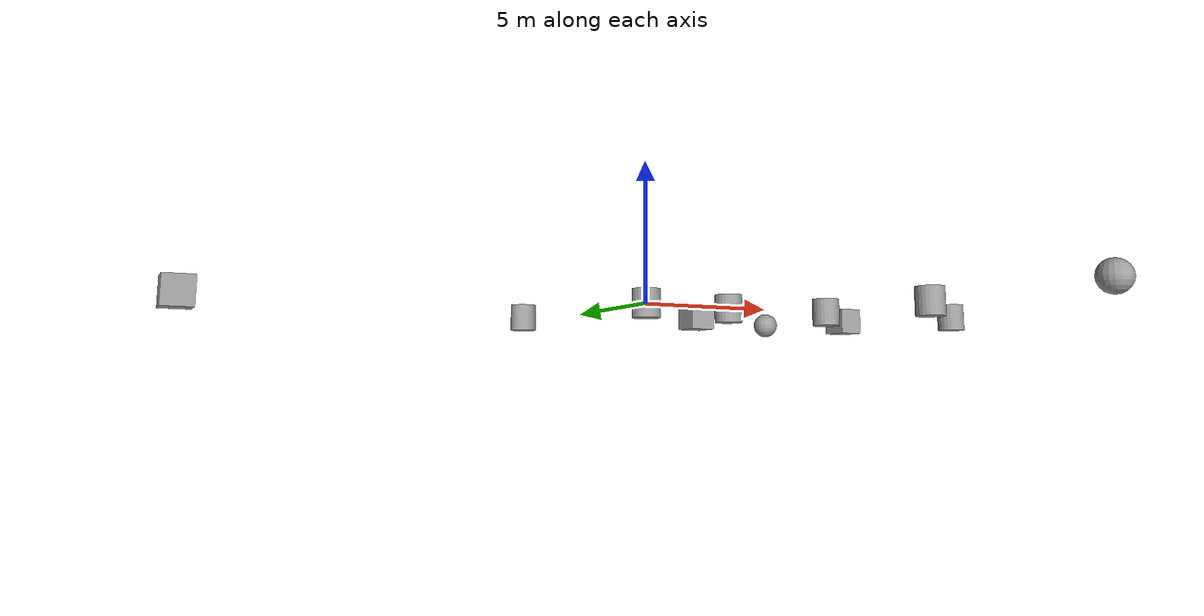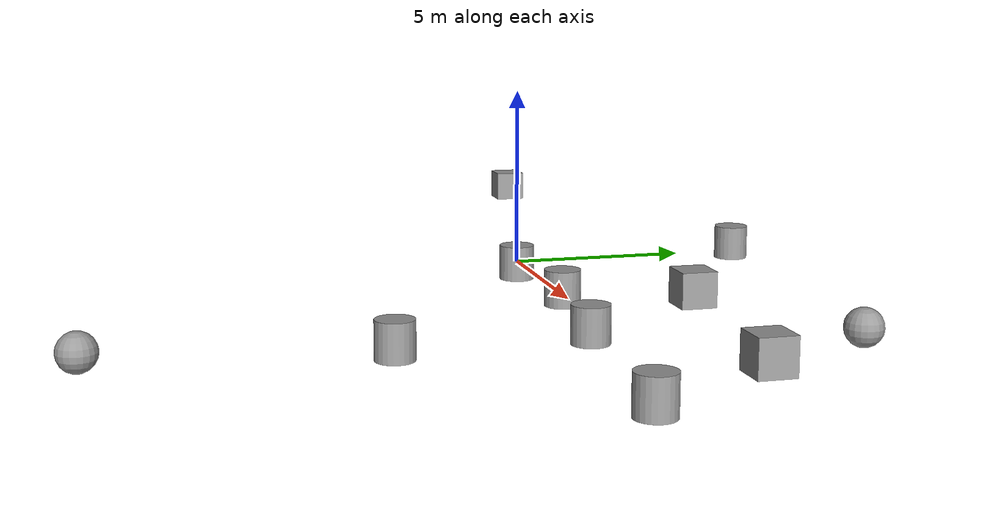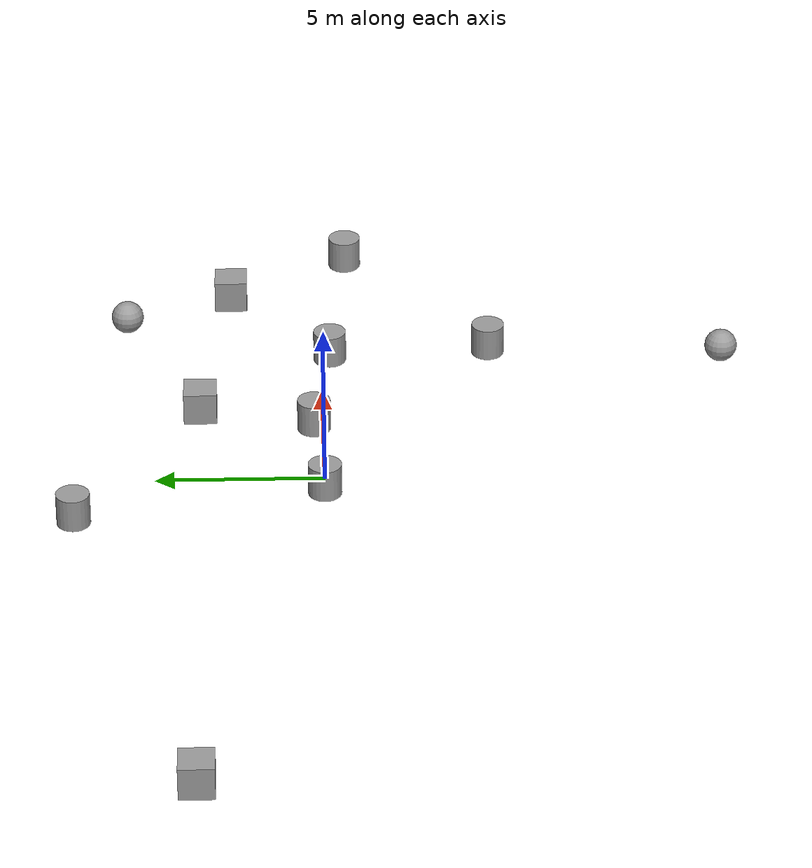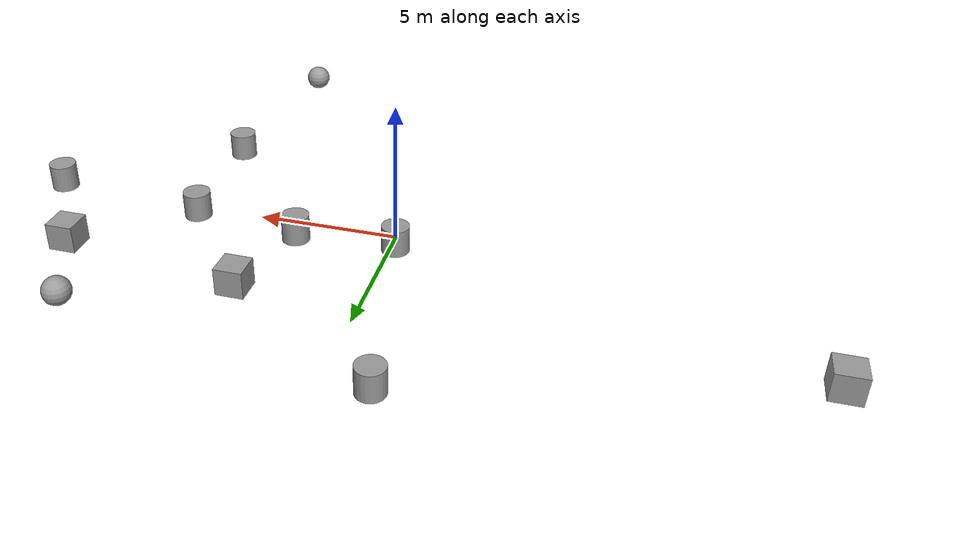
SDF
<?xml version='1.0'?>
<sdf version='1.7'>
  <model name='5550room2'>
    <link name='link'>
      <inertial>
        <mass>1</mass>
        <inertia>
          <ixx>0.145833</ixx>
          <ixy>0</ixy>
          <ixz>0</ixz>
          <iyy>0.145833</iyy>
          <iyz>0</iyz>
          <izz>0.125</izz>
        </inertia>
        <pose>0 0 0 0 -0 0</pose>
      </inertial>
      <self_collide>0</self_collide>
      <enable_wind>0</enable_wind>
      <kinematic>0</kinematic>
      <pose>0 0 0 0 -0 0</pose>
      <visual name='visual'>
        <geometry>
          <cylinder>
            <radius>0.5</radius>
            <length>1</length>
          </cylinder>
        </geometry>
        <material>
          <script>
            <name>Gazebo/Grey</name>
            <uri>file://media/materials/scripts/gazebo.material</uri>
          </script>
          <shader type='pixel'/>
        </material>
        <pose>0 0 0 0 -0 0</pose>
        <transparency>0</transparency>
        <cast_shadows>1</cast_shadows>
      </visual>
      <collision name='collision'>
        <laser_retro>0</laser_retro>
        <max_contacts>10</max_contacts>
        <pose>0 0 0 0 -0 0</pose>
        <geometry>
          <cylinder>
            <radius>0.5</radius>
            <length>1</length>
          </cylinder>
        </geometry>
        <surface>
          <friction>
            <ode>
              <mu>1</mu>
              <mu2>1</mu2>
              <fdir1>0 0 0</fdir1>
              <slip1>0</slip1>
              <slip2>0</slip2>
            </ode>
            <torsional>
              <coefficient>1</coefficient>
              <patch_radius>0</patch_radius>
              <surface_radius>0</surface_radius>
              <use_patch_radius>1</use_patch_radius>
              <ode>
                <slip>0</slip>
              </ode>
            </torsional>
          </friction>
          <bounce>
            <restitution_coefficient>0</restitution_coefficient>
            <threshold>1e+06</threshold>
          </bounce>
          <contact>
            <collide_without_contact>0</collide_without_contact>
            <collide_without_contact_bitmask>1</collide_without_contact_bitmask>
            <collide_bitmask>1</collide_bitmask>
            <ode>
              <soft_cfm>0</soft_cfm>
              <soft_erp>0.2</soft_erp>
              <kp>1e+13</kp>
              <kd>1</kd>
              <max_vel>0.01</max_vel>
              <min_depth>0</min_depth>
            </ode>
            <bullet>
              <split_impulse>1</split_impulse>
              <split_impulse_penetration_threshold>-0.01</split_impulse_penetration_threshold>
              <soft_cfm>0</soft_cfm>
              <soft_erp>0.2</soft_erp>
              <kp>1e+13</kp>
              <kd>1</kd>
            </bullet>
          </contact>
        </surface>
      </collision>
    </link>
    <link name='link_0'>
      <inertial>
        <mass>1</mass>
        <inertia>
          <ixx>0.145833</ixx>
          <ixy>0</ixy>
          <ixz>0</ixz>
          <iyy>0.145833</iyy>
          <iyz>0</iyz>
          <izz>0.125</izz>
        </inertia>
      </inertial>
      <pose>7.9857 -5.19386 -0 0 -0 0</pose>
      <visual name='visual'>
        <pose>0 0 0 0 -0 0</pose>
        <geometry>
          <cylinder>
            <radius>0.5</radius>
            <length>1</length>
          </cylinder>
        </geometry>
        <material>
          <lighting>1</lighting>
          <script>
            <uri>file://media/materials/scripts/gazebo.material</uri>
            <name>Gazebo/Grey</name>
          </script>
          <shader type='pixel'/>
        </material>
        <transparency>0</transparency>
        <cast_shadows>1</cast_shadows>
      </visual>
      <collision name='collision'>
        <laser_retro>0</laser_retro>
        <max_contacts>10</max_contacts>
        <pose>0 0 0 0 -0 0</pose>
        <geometry>
          <cylinder>
            <radius>0.5</radius>
            <length>1</length>
          </cylinder>
        </geometry>
        <surface>
          <friction>
            <ode>
              <mu>1</mu>
              <mu2>1</mu2>
              <fdir1>0 0 0</fdir1>
              <slip1>0</slip1>
              <slip2>0</slip2>
            </ode>
            <torsional>
              <coefficient>1</coefficient>
              <patch_radius>0</patch_radius>
              <surface_radius>0</surface_radius>
              <use_patch_radius>1</use_patch_radius>
              <ode>
                <slip>0</slip>
              </ode>
            </torsional>
          </friction>
          <bounce>
            <restitution_coefficient>0</restitution_coefficient>
            <threshold>1e+06</threshold>
          </bounce>
          <contact>
            <collide_without_contact>0</collide_without_contact>
            <collide_without_contact_bitmask>1</collide_without_contact_bitmask>
            <collide_bitmask>1</collide_bitmask>
            <ode>
              <soft_cfm>0</soft_cfm>
              <soft_erp>0.2</soft_erp>
              <kp>1e+13</kp>
              <kd>1</kd>
              <max_vel>0.01</max_vel>
              <min_depth>0</min_depth>
            </ode>
            <bullet>
              <split_impulse>1</split_impulse>
              <split_impulse_penetration_threshold>-0.01</split_impulse_penetration_threshold>
              <soft_cfm>0</soft_cfm>
              <soft_erp>0.2</soft_erp>
              <kp>1e+13</kp>
              <kd>1</kd>
            </bullet>
          </contact>
        </surface>
      </collision>
    </link>
    <link name='link_1'>
      <inertial>
        <mass>1</mass>
        <inertia>
          <ixx>0.1</ixx>
          <ixy>0</ixy>
          <ixz>0</ixz>
          <iyy>0.1</iyy>
          <iyz>0</iyz>
          <izz>0.1</izz>
        </inertia>
      </inertial>
      <pose>7.32017 -12.4174 -0 0 -0 0</pose>
      <visual name='visual'>
        <pose>0 0 0 0 -0 0</pose>
        <geometry>
          <sphere>
            <radius>0.5</radius>
          </sphere>
        </geometry>
        <material>
          <lighting>1</lighting>
          <script>
            <uri>file://media/materials/scripts/gazebo.material</uri>
            <name>Gazebo/Grey</name>
          </script>
          <shader type='pixel'/>
        </material>
        <transparency>0</transparency>
        <cast_shadows>1</cast_shadows>
      </visual>
      <collision name='collision'>
        <laser_retro>0</laser_retro>
        <max_contacts>10</max_contacts>
        <pose>0 0 0 0 -0 0</pose>
        <geometry>
          <sphere>
            <radius>0.5</radius>
          </sphere>
        </geometry>
        <surface>
          <friction>
            <ode>
              <mu>1</mu>
              <mu2>1</mu2>
              <fdir1>0 0 0</fdir1>
              <slip1>0</slip1>
              <slip2>0</slip2>
            </ode>
            <torsional>
              <coefficient>1</coefficient>
              <patch_radius>0</patch_radius>
              <surface_radius>0</surface_radius>
              <use_patch_radius>1</use_patch_radius>
              <ode>
                <slip>0</slip>
              </ode>
            </torsional>
          </friction>
          <bounce>
            <restitution_coefficient>0</restitution_coefficient>
            <threshold>1e+06</threshold>
          </bounce>
          <contact>
            <collide_without_contact>0</collide_without_contact>
            <collide_without_contact_bitmask>1</collide_without_contact_bitmask>
            <collide_bitmask>1</collide_bitmask>
            <ode>
              <soft_cfm>0</soft_cfm>
              <soft_erp>0.2</soft_erp>
              <kp>1e+13</kp>
              <kd>1</kd>
              <max_vel>0.01</max_vel>
              <min_depth>0</min_depth>
            </ode>
            <bullet>
              <split_impulse>1</split_impulse>
              <split_impulse_penetration_threshold>-0.01</split_impulse_penetration_threshold>
              <soft_cfm>0</soft_cfm>
              <soft_erp>0.2</soft_erp>
              <kp>1e+13</kp>
              <kd>1</kd>
            </bullet>
          </contact>
        </surface>
      </collision>
    </link>
    <link name='link_10'>
      <inertial>
        <mass>1</mass>
        <inertia>
          <ixx>0.145833</ixx>
          <ixy>0</ixy>
          <ixz>0</ixz>
          <iyy>0.145833</iyy>
          <iyz>0</iyz>
          <izz>0.125</izz>
        </inertia>
      </inertial>
      <pose>3.61931 0.2784 -0 0 -0 0</pose>
      <visual name='visual'>
        <pose>0 0 0 0 -0 0</pose>
        <geometry>
          <cylinder>
            <radius>0.5</radius>
            <length>1</length>
          </cylinder>
        </geometry>
        <material>
          <lighting>1</lighting>
          <script>
            <uri>file://media/materials/scripts/gazebo.material</uri>
            <name>Gazebo/Grey</name>
          </script>
          <shader type='pixel'/>
        </material>
        <transparency>0</transparency>
        <cast_shadows>1</cast_shadows>
      </visual>
      <collision name='collision'>
        <laser_retro>0</laser_retro>
        <max_contacts>10</max_contacts>
        <pose>0 0 0 0 -0 0</pose>
        <geometry>
          <cylinder>
            <radius>0.5</radius>
            <length>1</length>
          </cylinder>
        </geometry>
        <surface>
          <friction>
            <ode>
              <mu>1</mu>
              <mu2>1</mu2>
              <fdir1>0 0 0</fdir1>
              <slip1>0</slip1>
              <slip2>0</slip2>
            </ode>
            <torsional>
              <coefficient>1</coefficient>
              <patch_radius>0</patch_radius>
              <surface_radius>0</surface_radius>
              <use_patch_radius>1</use_patch_radius>
              <ode>
                <slip>0</slip>
              </ode>
            </torsional>
          </friction>
          <bounce>
            <restitution_coefficient>0</restitution_coefficient>
            <threshold>1e+06</threshold>
          </bounce>
          <contact>
            <collide_without_contact>0</collide_without_contact>
            <collide_without_contact_bitmask>1</collide_without_contact_bitmask>
            <collide_bitmask>1</collide_bitmask>
            <ode>
              <soft_cfm>0</soft_cfm>
              <soft_erp>0.2</soft_erp>
              <kp>1e+13</kp>
              <kd>1</kd>
              <max_vel>0.01</max_vel>
              <min_depth>0</min_depth>
            </ode>
            <bullet>
              <split_impulse>1</split_impulse>
              <split_impulse_penetration_threshold>-0.01</split_impulse_penetration_threshold>
              <soft_cfm>0</soft_cfm>
              <soft_erp>0.2</soft_erp>
              <kp>1e+13</kp>
              <kd>1</kd>
            </bullet>
          </contact>
        </surface>
      </collision>
    </link>
    <link name='link_2'>
      <inertial>
        <mass>1</mass>
        <inertia>
          <ixx>0.166667</ixx>
          <ixy>0</ixy>
          <ixz>0</ixz>
          <iyy>0.166667</iyy>
          <iyz>0</iyz>
          <izz>0.166667</izz>
        </inertia>
      </inertial>
      <pose>-14.4788 3.64325 0 0 -0 0</pose>
      <visual name='visual'>
        <pose>0 0 0 0 -0 0</pose>
        <geometry>
          <box>
            <size>1 1 1</size>
          </box>
        </geometry>
        <material>
          <lighting>1</lighting>
          <script>
            <uri>file://media/materials/scripts/gazebo.material</uri>
            <name>Gazebo/Grey</name>
          </script>
          <shader type='pixel'/>
        </material>
        <transparency>0</transparency>
        <cast_shadows>1</cast_shadows>
      </visual>
      <collision name='collision'>
        <laser_retro>0</laser_retro>
        <max_contacts>10</max_contacts>
        <pose>0 0 0 0 -0 0</pose>
        <geometry>
          <box>
            <size>1 1 1</size>
          </box>
        </geometry>
        <surface>
          <friction>
            <ode>
              <mu>1</mu>
              <mu2>1</mu2>
              <fdir1>0 0 0</fdir1>
              <slip1>0</slip1>
              <slip2>0</slip2>
            </ode>
            <torsional>
              <coefficient>1</coefficient>
              <patch_radius>0</patch_radius>
              <surface_radius>0</surface_radius>
              <use_patch_radius>1</use_patch_radius>
              <ode>
                <slip>0</slip>
              </ode>
            </torsional>
          </friction>
          <bounce>
            <restitution_coefficient>0</restitution_coefficient>
            <threshold>1e+06</threshold>
          </bounce>
          <contact>
            <collide_without_contact>0</collide_without_contact>
            <collide_without_contact_bitmask>1</collide_without_contact_bitmask>
            <collide_bitmask>1</collide_bitmask>
            <ode>
              <soft_cfm>0</soft_cfm>
              <soft_erp>0.2</soft_erp>
              <kp>1e+13</kp>
              <kd>1</kd>
              <max_vel>0.01</max_vel>
              <min_depth>0</min_depth>
            </ode>
            <bullet>
              <split_impulse>1</split_impulse>
              <split_impulse_penetration_threshold>-0.01</split_impulse_penetration_threshold>
              <soft_cfm>0</soft_cfm>
              <soft_erp>0.2</soft_erp>
              <kp>1e+13</kp>
              <kd>1</kd>
            </bullet>
          </contact>
        </surface>
      </collision>
    </link>
    <link name='link_3'>
      <inertial>
        <mass>1</mass>
        <inertia>
          <ixx>0.166667</ixx>
          <ixy>0</ixy>
          <ixz>0</ixz>
          <iyy>0.166667</iyy>
          <iyz>0</iyz>
          <izz>0.166667</izz>
        </inertia>
      </inertial>
      <pose>4.47017 3.72356 -0 0 -0 0</pose>
      <visual name='visual'>
        <pose>0 0 0 0 -0 0</pose>
        <geometry>
          <box>
            <size>1 1 1</size>
          </box>
        </geometry>
        <material>
          <lighting>1</lighting>
          <script>
            <uri>file://media/materials/scripts/gazebo.material</uri>
            <name>Gazebo/Grey</name>
          </script>
          <shader type='pixel'/>
        </material>
        <transparency>0</transparency>
        <cast_shadows>1</cast_shadows>
      </visual>
      <collision name='collision'>
        <laser_retro>0</laser_retro>
        <max_contacts>10</max_contacts>
        <pose>0 0 0 0 -0 0</pose>
        <geometry>
          <box>
            <size>1 1 1</size>
          </box>
        </geometry>
        <surface>
          <friction>
            <ode>
              <mu>1</mu>
              <mu2>1</mu2>
              <fdir1>0 0 0</fdir1>
              <slip1>0</slip1>
              <slip2>0</slip2>
            </ode>
            <torsional>
              <coefficient>1</coefficient>
              <patch_radius>0</patch_radius>
              <surface_radius>0</surface_radius>
              <use_patch_radius>1</use_patch_radius>
              <ode>
                <slip>0</slip>
              </ode>
            </torsional>
          </friction>
          <bounce>
            <restitution_coefficient>0</restitution_coefficient>
            <threshold>1e+06</threshold>
          </bounce>
          <contact>
            <collide_without_contact>0</collide_without_contact>
            <collide_without_contact_bitmask>1</collide_without_contact_bitmask>
            <collide_bitmask>1</collide_bitmask>
            <ode>
              <soft_cfm>0</soft_cfm>
              <soft_erp>0.2</soft_erp>
              <kp>1e+13</kp>
              <kd>1</kd>
              <max_vel>0.01</max_vel>
              <min_depth>0</min_depth>
            </ode>
            <bullet>
              <split_impulse>1</split_impulse>
              <split_impulse_penetration_threshold>-0.01</split_impulse_penetration_threshold>
              <soft_cfm>0</soft_cfm>
              <soft_erp>0.2</soft_erp>
              <kp>1e+13</kp>
              <kd>1</kd>
            </bullet>
          </contact>
        </surface>
      </collision>
    </link>
    <link name='link_4'>
      <inertial>
        <mass>1</mass>
        <inertia>
          <ixx>0.145833</ixx>
          <ixy>0</ixy>
          <ixz>0</ixz>
          <iyy>0.145833</iyy>
          <iyz>0</iyz>
          <izz>0.125</izz>
        </inertia>
      </inertial>
      <pose>13.6329 -0.835785 -0 0 -0 0</pose>
      <visual name='visual'>
        <pose>0 0 0 0 -0 0</pose>
        <geometry>
          <cylinder>
            <radius>0.5</radius>
            <length>1</length>
          </cylinder>
        </geometry>
        <material>
          <lighting>1</lighting>
          <script>
            <uri>file://media/materials/scripts/gazebo.material</uri>
            <name>Gazebo/Grey</name>
          </script>
          <shader type='pixel'/>
        </material>
        <transparency>0</transparency>
        <cast_shadows>1</cast_shadows>
      </visual>
      <collision name='collision'>
        <laser_retro>0</laser_retro>
        <max_contacts>10</max_contacts>
        <pose>0 0 0 0 -0 0</pose>
        <geometry>
          <cylinder>
            <radius>0.5</radius>
            <length>1</length>
          </cylinder>
        </geometry>
        <surface>
          <friction>
            <ode>
              <mu>1</mu>
              <mu2>1</mu2>
              <fdir1>0 0 0</fdir1>
              <slip1>0</slip1>
              <slip2>0</slip2>
            </ode>
            <torsional>
              <coefficient>1</coefficient>
              <patch_radius>0</patch_radius>
              <surface_radius>0</surface_radius>
              <use_patch_radius>1</use_patch_radius>
              <ode>
                <slip>0</slip>
              </ode>
            </torsional>
          </friction>
          <bounce>
            <restitution_coefficient>0</restitution_coefficient>
            <threshold>1e+06</threshold>
          </bounce>
          <contact>
            <collide_without_contact>0</collide_without_contact>
            <collide_without_contact_bitmask>1</collide_without_contact_bitmask>
            <collide_bitmask>1</collide_bitmask>
            <ode>
              <soft_cfm>0</soft_cfm>
              <soft_erp>0.2</soft_erp>
              <kp>1e+13</kp>
              <kd>1</kd>
              <max_vel>0.01</max_vel>
              <min_depth>0</min_depth>
            </ode>
            <bullet>
              <split_impulse>1</split_impulse>
              <split_impulse_penetration_threshold>-0.01</split_impulse_penetration_threshold>
              <soft_cfm>0</soft_cfm>
              <soft_erp>0.2</soft_erp>
              <kp>1e+13</kp>
              <kd>1</kd>
            </bullet>
          </contact>
        </surface>
      </collision>
    </link>
    <link name='link_5'>
      <inertial>
        <mass>1</mass>
        <inertia>
          <ixx>0.1</ixx>
          <ixy>0</ixy>
          <ixz>0</ixz>
          <iyy>0.1</iyy>
          <iyz>0</iyz>
          <izz>0.1</izz>
        </inertia>
      </inertial>
      <pose>9.64422 6.04812 -0 0 -0 0</pose>
      <visual name='visual'>
        <pose>0 0 0 0 -0 0</pose>
        <geometry>
          <sphere>
            <radius>0.5</radius>
          </sphere>
        </geometry>
        <material>
          <lighting>1</lighting>
          <script>
            <uri>file://media/materials/scripts/gazebo.material</uri>
            <name>Gazebo/Grey</name>
          </script>
          <shader type='pixel'/>
        </material>
        <transparency>0</transparency>
        <cast_shadows>1</cast_shadows>
      </visual>
      <collision name='collision'>
        <laser_retro>0</laser_retro>
        <max_contacts>10</max_contacts>
        <pose>0 0 0 0 -0 0</pose>
        <geometry>
          <sphere>
            <radius>0.5</radius>
          </sphere>
        </geometry>
        <surface>
          <friction>
            <ode>
              <mu>1</mu>
              <mu2>1</mu2>
              <fdir1>0 0 0</fdir1>
              <slip1>0</slip1>
              <slip2>0</slip2>
            </ode>
            <torsional>
              <coefficient>1</coefficient>
              <patch_radius>0</patch_radius>
              <surface_radius>0</surface_radius>
              <use_patch_radius>1</use_patch_radius>
              <ode>
                <slip>0</slip>
              </ode>
            </torsional>
          </friction>
          <bounce>
            <restitution_coefficient>0</restitution_coefficient>
            <threshold>1e+06</threshold>
          </bounce>
          <contact>
            <collide_without_contact>0</collide_without_contact>
            <collide_without_contact_bitmask>1</collide_without_contact_bitmask>
            <collide_bitmask>1</collide_bitmask>
            <ode>
              <soft_cfm>0</soft_cfm>
              <soft_erp>0.2</soft_erp>
              <kp>1e+13</kp>
              <kd>1</kd>
              <max_vel>0.01</max_vel>
              <min_depth>0</min_depth>
            </ode>
            <bullet>
              <split_impulse>1</split_impulse>
              <split_impulse_penetration_threshold>-0.01</split_impulse_penetration_threshold>
              <soft_cfm>0</soft_cfm>
              <soft_erp>0.2</soft_erp>
              <kp>1e+13</kp>
              <kd>1</kd>
            </bullet>
          </contact>
        </surface>
      </collision>
    </link>
    <link name='link_7'>
      <inertial>
        <mass>1</mass>
        <inertia>
          <ixx>0.145833</ixx>
          <ixy>0</ixy>
          <ixz>0</ixz>
          <iyy>0.145833</iyy>
          <iyz>0</iyz>
          <izz>0.125</izz>
        </inertia>
      </inertial>
      <pose>7.69146 -0.265471 -0 0 -0 0</pose>
      <visual name='visual'>
        <pose>0 0 0 0 -0 0</pose>
        <geometry>
          <cylinder>
            <radius>0.5</radius>
            <length>1</length>
          </cylinder>
        </geometry>
        <material>
          <lighting>1</lighting>
          <script>
            <uri>file://media/materials/scripts/gazebo.material</uri>
            <name>Gazebo/Grey</name>
          </script>
          <shader type='pixel'/>
        </material>
        <transparency>0</transparency>
        <cast_shadows>1</cast_shadows>
      </visual>
      <collision name='collision'>
        <laser_retro>0</laser_retro>
        <max_contacts>10</max_contacts>
        <pose>0 0 0 0 -0 0</pose>
        <geometry>
          <cylinder>
            <radius>0.5</radius>
            <length>1</length>
          </cylinder>
        </geometry>
        <surface>
          <friction>
            <ode>
              <mu>1</mu>
              <mu2>1</mu2>
              <fdir1>0 0 0</fdir1>
              <slip1>0</slip1>
              <slip2>0</slip2>
            </ode>
            <torsional>
              <coefficient>1</coefficient>
              <patch_radius>0</patch_radius>
              <surface_radius>0</surface_radius>
              <use_patch_radius>1</use_patch_radius>
              <ode>
                <slip>0</slip>
              </ode>
            </torsional>
          </friction>
          <bounce>
            <restitution_coefficient>0</restitution_coefficient>
            <threshold>1e+06</threshold>
          </bounce>
          <contact>
            <collide_without_contact>0</collide_without_contact>
            <collide_without_contact_bitmask>1</collide_without_contact_bitmask>
            <collide_bitmask>1</collide_bitmask>
            <ode>
              <soft_cfm>0</soft_cfm>
              <soft_erp>0.2</soft_erp>
              <kp>1e+13</kp>
              <kd>1</kd>
              <max_vel>0.01</max_vel>
              <min_depth>0</min_depth>
            </ode>
            <bullet>
              <split_impulse>1</split_impulse>
              <split_impulse_penetration_threshold>-0.01</split_impulse_penetration_threshold>
              <soft_cfm>0</soft_cfm>
              <soft_erp>0.2</soft_erp>
              <kp>1e+13</kp>
              <kd>1</kd>
            </bullet>
          </contact>
        </surface>
      </collision>
    </link>
    <link name='link_8'>
      <inertial>
        <mass>1</mass>
        <inertia>
          <ixx>0.145833</ixx>
          <ixy>0</ixy>
          <ixz>0</ixz>
          <iyy>0.145833</iyy>
          <iyz>0</iyz>
          <izz>0.125</izz>
        </inertia>
      </inertial>
      <pose>-1.38038 7.37646 0 0 -0 0</pose>
      <visual name='visual'>
        <pose>0 0 0 0 -0 0</pose>
        <geometry>
          <cylinder>
            <radius>0.5</radius>
            <length>1</length>
          </cylinder>
        </geometry>
        <material>
          <lighting>1</lighting>
          <script>
            <uri>file://media/materials/scripts/gazebo.material</uri>
            <name>Gazebo/Grey</name>
          </script>
          <shader type='pixel'/>
        </material>
        <transparency>0</transparency>
        <cast_shadows>1</cast_shadows>
      </visual>
      <collision name='collision'>
        <laser_retro>0</laser_retro>
        <max_contacts>10</max_contacts>
        <pose>0 0 0 0 -0 0</pose>
        <geometry>
          <cylinder>
            <radius>0.5</radius>
            <length>1</length>
          </cylinder>
        </geometry>
        <surface>
          <friction>
            <ode>
              <mu>1</mu>
              <mu2>1</mu2>
              <fdir1>0 0 0</fdir1>
              <slip1>0</slip1>
              <slip2>0</slip2>
            </ode>
            <torsional>
              <coefficient>1</coefficient>
              <patch_radius>0</patch_radius>
              <surface_radius>0</surface_radius>
              <use_patch_radius>1</use_patch_radius>
              <ode>
                <slip>0</slip>
              </ode>
            </torsional>
          </friction>
          <bounce>
            <restitution_coefficient>0</restitution_coefficient>
            <threshold>1e+06</threshold>
          </bounce>
          <contact>
            <collide_without_contact>0</collide_without_contact>
            <collide_without_contact_bitmask>1</collide_without_contact_bitmask>
            <collide_bitmask>1</collide_bitmask>
            <ode>
              <soft_cfm>0</soft_cfm>
              <soft_erp>0.2</soft_erp>
              <kp>1e+13</kp>
              <kd>1</kd>
              <max_vel>0.01</max_vel>
              <min_depth>0</min_depth>
            </ode>
            <bullet>
              <split_impulse>1</split_impulse>
              <split_impulse_penetration_threshold>-0.01</split_impulse_penetration_threshold>
              <soft_cfm>0</soft_cfm>
              <soft_erp>0.2</soft_erp>
              <kp>1e+13</kp>
              <kd>1</kd>
            </bullet>
          </contact>
        </surface>
      </collision>
    </link>
    <link name='link_9'>
      <inertial>
        <mass>1</mass>
        <inertia>
          <ixx>0.166667</ixx>
          <ixy>0</ixy>
          <ixz>0</ixz>
          <iyy>0.166667</iyy>
          <iyz>0</iyz>
          <izz>0.166667</izz>
        </inertia>
      </inertial>
      <pose>11.2438 2.81291 -0 0 -0 0</pose>
      <visual name='visual'>
        <pose>0 0 0 0 -0 0</pose>
        <geometry>
          <box>
            <size>1 1 1</size>
          </box>
        </geometry>
        <material>
          <lighting>1</lighting>
          <script>
            <uri>file://media/materials/scripts/gazebo.material</uri>
            <name>Gazebo/Grey</name>
          </script>
          <shader type='pixel'/>
        </material>
        <transparency>0</transparency>
        <cast_shadows>1</cast_shadows>
      </visual>
      <collision name='collision'>
        <laser_retro>0</laser_retro>
        <max_contacts>10</max_contacts>
        <pose>0 0 0 0 -0 0</pose>
        <geometry>
          <box>
            <size>1 1 1</size>
          </box>
        </geometry>
        <surface>
          <friction>
            <ode>
              <mu>1</mu>
              <mu2>1</mu2>
              <fdir1>0 0 0</fdir1>
              <slip1>0</slip1>
              <slip2>0</slip2>
            </ode>
            <torsional>
              <coefficient>1</coefficient>
              <patch_radius>0</patch_radius>
              <surface_radius>0</surface_radius>
              <use_patch_radius>1</use_patch_radius>
              <ode>
                <slip>0</slip>
              </ode>
            </torsional>
          </friction>
          <bounce>
            <restitution_coefficient>0</restitution_coefficient>
            <threshold>1e+06</threshold>
          </bounce>
          <contact>
            <collide_without_contact>0</collide_without_contact>
            <collide_without_contact_bitmask>1</collide_without_contact_bitmask>
            <collide_bitmask>1</collide_bitmask>
            <ode>
              <soft_cfm>0</soft_cfm>
              <soft_erp>0.2</soft_erp>
              <kp>1e+13</kp>
              <kd>1</kd>
              <max_vel>0.01</max_vel>
              <min_depth>0</min_depth>
            </ode>
            <bullet>
              <split_impulse>1</split_impulse>
              <split_impulse_penetration_threshold>-0.01</split_impulse_penetration_threshold>
              <soft_cfm>0</soft_cfm>
              <soft_erp>0.2</soft_erp>
              <kp>1e+13</kp>
              <kd>1</kd>
            </bullet>
          </contact>
        </surface>
      </collision>
    </link>
    <static>0</static>
    <allow_auto_disable>1</allow_auto_disable>
  </model>
</sdf>
